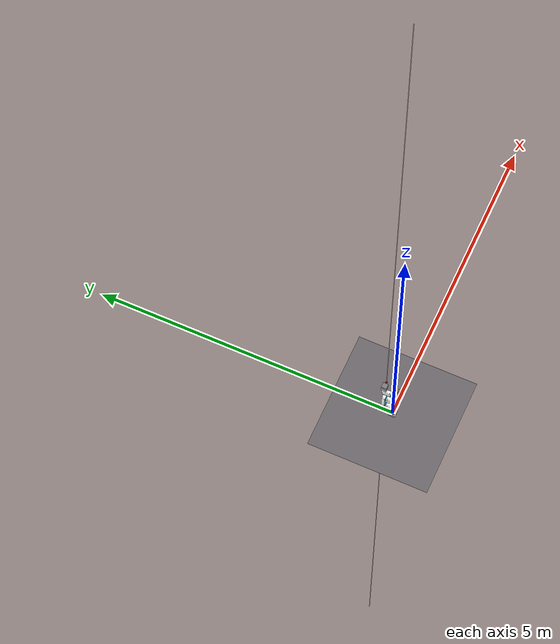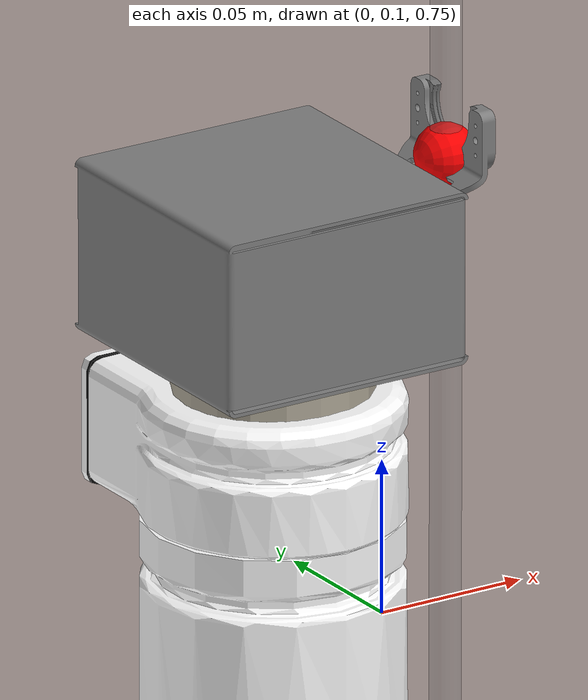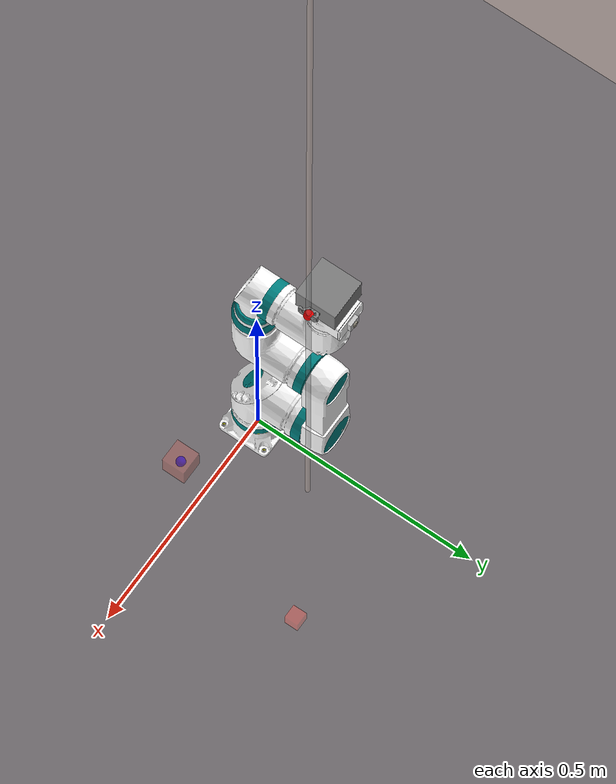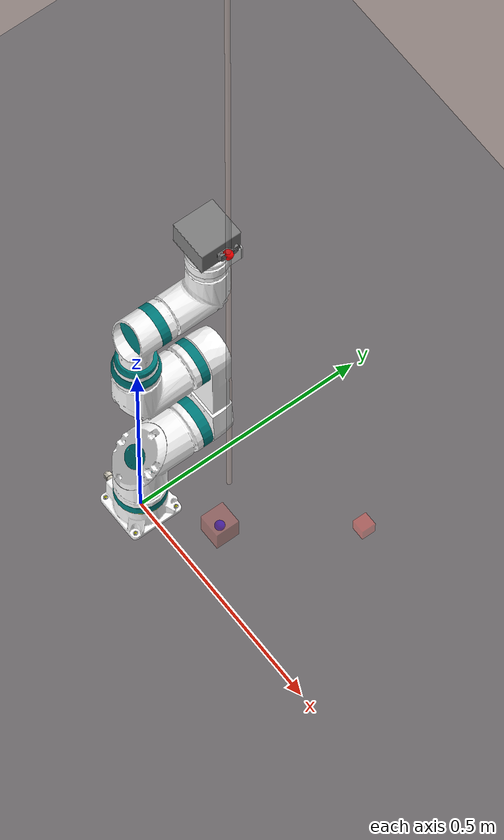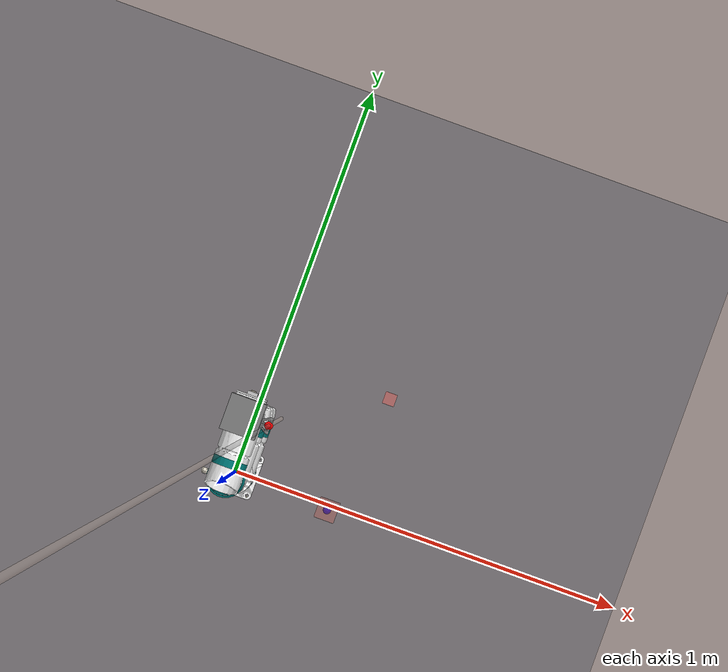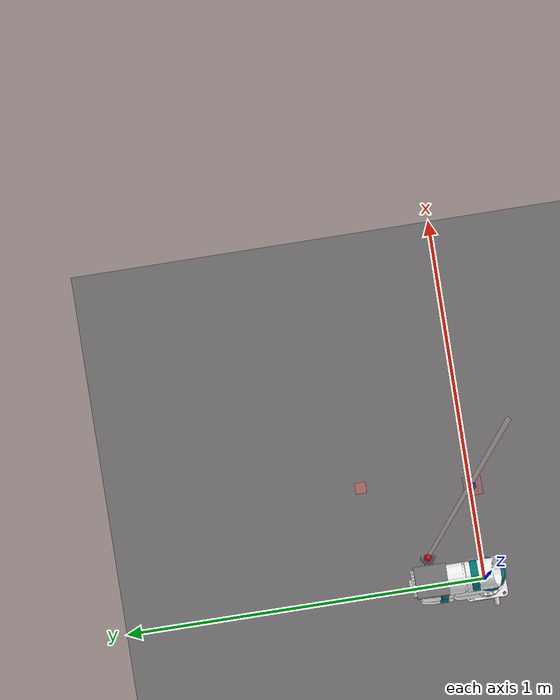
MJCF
<mujoco model="a3c scene">
  <include file="a3c_gpt.xml"/>

  <statistic center="0.3 0 0.4" extent="0.8" meansize="0.025"/>
  <option impratio="50" cone="elliptic" density="1.2" viscosity="0.00002" integrator="implicitfast"/>
  <option>
  <flag multiccd="enable" nativeccd="enable"/>
  </option>

  <visual>
    <headlight diffuse="0.6 0.6 0.6" ambient="0.1 0.1 0.1" specular="0 0 0"/>
    <global azimuth="120" elevation="-20"/>
    <map force="1"/>
  </visual>

  <asset>
    <texture name="grid" type="2d" builtin="checker" rgb1=".2 .3 .4" rgb2=".1 0.15 0.2" width="512" height="512"
      mark="cross" markrgb=".8 .8 .8"/>
    <material name="grid" texture="grid" texrepeat="1 1" texuniform="true"/>
  </asset>

  <worldbody>
    <light pos="0 0 1.5" directional="true"/>
    <geom name="floor" size="1 1 0.01" type="plane" material="grid" solref="0.02 10" />
    <body name="target" pos="0.25 0 .3" quat="0 0 0 1" mocap="true">
      <geom type="box" size=".025 .025 .025" contype="0" conaffinity="0" rgba=".6 .3 .3 .5"/>
      <site type="sphere" size="0.01" rgba="0 0 1 1" group="1"/>
    </body>

    <body name="object" pos="0.3 0.3 0.025" euler="180 0 0">
      <geom name="red_box" type="box" size=".015 0.015 0.015" solimp="0.998 0.998 0.001" solref="0.02 10" rgba="1 0 0 0.25" density="50" friction = "2 0.05 0.0001"/>
      <joint name="object_joint" type="free" damping="0.0005"/>
    </body>
  </worldbody>
</mujoco>

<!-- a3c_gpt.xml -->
<mujoco model="robot_arm">
    <compiler autolimits="true"/>
    <option integrator="implicitfast"/>
	<default>
		<!-- Default definitions for visual and collision geoms -->
		<default class="visual">
			<geom type="mesh" mass="0" group="2" contype="0" conaffinity="0"/>
		</default>
		<default class="collision">
			<geom group="3" type="mesh" condim="6" friction="1 5e-3 5e-4" solref=".01 1"/>
		</default>
		<!-- Default definition for all hinge joints -->
		<default class="joint_hinge" >
			<joint type="hinge" axis="0 1 0" range="-180 180" armature="0.005"/>
		</default>
		<!-- Default definition for slide joints with positive range -->
		<default class="joint_slide_pos">
			<joint type="slide" axis="0 1 0" range="0 0.02" damping="100" armature="0.005"/>
		</default>
		<!-- Default definition for slide joints with negative range -->
		<default class="joint_slide_neg">
			<joint type="slide" axis="0 1 0" range="-0.02 0" damping="100" armature="0.005"/>
		</default>

        <!-- Default settings for arm position servos -->
        <default class="arm_position">
            <position ctrlrange="-180 180" kp="1.5" kv="1.5"/>
        </default>
        <!-- Default settings for finger position servos -->
        <default class="finger_position">
            <position ctrlrange="-180 180"/>
        </default>
	</default>

	<asset>
		<!-- All materials -->
		<material name="DEFAULT_MTL.001" specular="0.0" shininess="0.25" rgba="0.800000 0.800000 0.800000 1.000000"/>
		<material name="MTL0.005" specular="0.0" shininess="0.25" rgba="1.000000 1.000000 0.000000 1.000000"/>
		<material name="MTL1.003" specular="0.0" shininess="0.25" rgba="1.000000 1.000000 1.000000 1.000000"/>
		<material name="MTL2.002" specular="0.0" shininess="0.25" rgba="1.000000 0.000000 0.000000 1.000000"/>
		<material name="MTL3.001" specular="0.0" shininess="0.25" rgba="0.000000 0.502000 0.502000 1.000000"/>
		<material name="MTL4.001" specular="0.0" shininess="0.25" rgba="0.110000 0.110000 0.110000 1.000000"/>
		<material name="MTL5.001" specular="0.0" shininess="0.25" rgba="0.843000 0.816000 0.753000 1.000000"/>

		<material name="MTL0.006" specular="0.0" shininess="0.25" rgba="1.000000 1.000000 1.000000 1.000000"/>
		<material name="MTL0.007" specular="0.0" shininess="0.25" rgba="0.000000 0.502000 0.502000 1.000000"/>
		<material name="MTL0.008" specular="0.0" shininess="0.25" rgba="0.000000 0.502000 0.502000 1.000000"/>
		<material name="MTL0.009" specular="0.0" shininess="0.25" rgba="0.000000 0.502000 0.502000 1.000000"/>
		<material name="MTL1.002" specular="0.0" shininess="0.25" rgba="1.000000 1.000000 1.000000 1.000000"/>
		<material name="MTL2.001" specular="0.0" shininess="0.25" rgba="1.000000 0.000000 0.000000 1.000000"/>
		<material name="Material.002" specular="0.0" shininess="0.25" rgba="0.800000 0.800000 0.800000 1.000000"/>

		<material name="DEFAULT_MTL" specular="0.0" shininess="0.25" rgba="0.800000 0.800000 0.800000 1.000000"/>
		<material name="MTL0.010" specular="0.0" shininess="0.25" rgba="1.000000 1.000000 1.000000 1.000000"/>
		<material name="MTL1.004" specular="0.0" shininess="0.25" rgba="0.000000 0.502000 0.502000 1.000000"/>

		<material name="MTL0" specular="0.0" shininess="0.25" rgba="1.000000 1.000000 1.000000 1.000000"/>
		<material name="MTL0.011" specular="0.0" shininess="0.25" rgba="0.000000 0.502000 0.502000 1.000000"/>
		<material name="MTL0.012" specular="0.0" shininess="0.25" rgba="0.000000 0.502000 0.502000 1.000000"/>
		<material name="MTL1" specular="0.0" shininess="0.25" rgba="0.000000 0.502000 0.502000 1.000000"/>

		<material name="MTL0.013" specular="0.0" shininess="0.25" rgba="1.000000 1.000000 1.000000 1.000000"/>
		<material name="MTL1.005" specular="0.0" shininess="0.25" rgba="0.000000 0.502000 0.502000 1.000000"/>

		<material name="MTL0.014" specular="0.0" shininess="0.25" rgba="0.000000 0.502000 0.502000 1.000000"/>
		<material name="MTL0.015" specular="0.0" shininess="0.25" rgba="1.000000 1.000000 1.000000 1.000000"/>
		<material name="MTL1.006" specular="0.0" shininess="0.25" rgba="0.000000 0.502000 0.502000 1.000000"/>

		<material name="DEFAULT_MTL.002" specular="0.0" shininess="0.25" rgba="0.800000 0.800000 0.800000 1.000000"/>
		<material name="MTL0.016" specular="0.0" shininess="0.25" rgba="1.000000 1.000000 1.000000 1.000000"/>
		<material name="MTL1.007" specular="0.0" shininess="0.25" rgba="0.098000 0.098000 0.098000 1.000000"/>
		<material name="MTL10" specular="0.0" shininess="0.25" rgba="0.843000 0.816000 0.753000 1.000000"/>
		<material name="MTL11" specular="0.0" shininess="0.25" rgba="0.251000 0.251000 0.251000 1.000000"/>
		<material name="MTL12" specular="0.0" shininess="0.25" rgba="0.827000 0.329000 0.071000 1.000000"/>
		<material name="MTL13" specular="0.0" shininess="0.25" rgba="0.017000 0.018000 0.019000 1.000000"/>
		<material name="MTL2.003" specular="0.0" shininess="0.25" rgba="0.784000 0.686000 0.510000 1.000000"/>
		<material name="MTL3" specular="0.0" shininess="0.25" rgba="0.691000 0.664000 0.598000 1.000000"/>
		<material name="MTL4" specular="0.0" shininess="0.25" rgba="0.060000 0.400000 0.060000 1.000000"/>
		<material name="MTL5" specular="0.0" shininess="0.25" rgba="0.157000 0.157000 0.157000 1.000000"/>
		<material name="MTL6" specular="0.0" shininess="0.25" rgba="0.725000 0.725000 0.725000 1.000000"/>
		<material name="MTL7" specular="0.0" shininess="0.25" rgba="0.459000 0.345000 0.176000 1.000000"/>
		<material name="MTL8" specular="0.0" shininess="0.25" rgba="0.502000 0.502000 0.502000 1.000000"/>
		<material name="MTL9" specular="0.0" shininess="0.25" rgba="1.000000 1.000000 0.000000 1.000000"/>

		<!-- Meshes for all links -->
		<mesh file="meshes/visual/base_link/base_link_0.obj"/>
		<mesh file="meshes/visual/base_link/base_link_1.obj"/>
		<mesh file="meshes/visual/base_link/base_link_2.obj"/>
		<mesh file="meshes/visual/base_link/base_link_3.obj"/>
		<mesh file="meshes/visual/base_link/base_link_4.obj"/>
		<mesh file="meshes/visual/base_link/base_link_5.obj"/>
		<mesh file="meshes/visual/base_link/base_link_6.obj"/>

		<mesh file="meshes/visual/l1/l1_0.obj"/>
		<mesh file="meshes/visual/l1/l1_1.obj"/>
		<mesh file="meshes/visual/l1/l1_2.obj"/>
		<mesh file="meshes/visual/l1/l1_3.obj"/>
		<mesh file="meshes/visual/l1/l1_4.obj"/>
		<mesh file="meshes/visual/l1/l1_5.obj"/>
		<mesh file="meshes/visual/l1/l1_6.obj"/>

		<mesh file="meshes/visual/l2/l2_0.obj"/>
		<mesh file="meshes/visual/l2/l2_1.obj"/>
		<mesh file="meshes/visual/l2/l2_2.obj"/>

		<mesh file="meshes/visual/l3/l3_0.obj"/>
		<mesh file="meshes/visual/l3/l3_1.obj"/>
		<mesh file="meshes/visual/l3/l3_2.obj"/>
		<mesh file="meshes/visual/l3/l3_3.obj"/>

		<mesh file="meshes/visual/l4/l4_0.obj"/>
		<mesh file="meshes/visual/l4/l4_1.obj"/>

		<mesh file="meshes/visual/l5/l5_0.obj"/>
		<mesh file="meshes/visual/l5/l5_1.obj"/>
		<mesh file="meshes/visual/l5/l5_2.obj"/>

		<mesh file="meshes/visual/l6/l6_0.obj"/>
		<mesh file="meshes/visual/l6/l6_1.obj"/>
		<mesh file="meshes/visual/l6/l6_2.obj"/>
		<mesh file="meshes/visual/l6/l6_3.obj"/>
		<mesh file="meshes/visual/l6/l6_4.obj"/>
		<mesh file="meshes/visual/l6/l6_5.obj"/>
		<mesh file="meshes/visual/l6/l6_6.obj"/>
		<mesh file="meshes/visual/l6/l6_7.obj"/>
		<mesh file="meshes/visual/l6/l6_8.obj"/>
		<mesh file="meshes/visual/l6/l6_9.obj"/>
		<mesh file="meshes/visual/l6/l6_10.obj"/>
		<mesh file="meshes/visual/l6/l6_11.obj"/>
		<mesh file="meshes/visual/l6/l6_12.obj"/>
		<mesh file="meshes/visual/l6/l6_13.obj"/>
		<mesh file="meshes/visual/l6/l6_14.obj"/>

		<mesh file="meshes/visual/cover/cover.obj"/>

		<mesh file="meshes/visual/finger1/finger1.obj"/>
		<mesh file="meshes/visual/finger2/finger2.obj"/>
	</asset>

	<worldbody>
		<body name="base_link" euler="90 0 0">
			<!-- base_link geoms -->
			<inertial pos="0 0 0" mass="0.1" diaginertia="0.03 0.03 0.03"/>
			<geom mesh="base_link_0" material="DEFAULT_MTL.001" class="visual"/>
			<geom mesh="base_link_1" material="MTL5.001" class="visual"/>
			<geom mesh="base_link_2" material="MTL4.001" class="visual"/>
			<geom mesh="base_link_3" material="MTL3.001" class="visual"/>
			<geom mesh="base_link_4" material="MTL2.002" class="visual"/>
			<geom mesh="base_link_5" material="MTL1.003" class="visual"/>
			<geom mesh="base_link_6" material="MTL0.005" class="visual"/>
			<geom mesh="base_link_0" class="collision"/>
			<geom mesh="base_link_1" class="collision"/>
			<geom mesh="base_link_2" class="collision"/>
			<geom mesh="base_link_3" class="collision"/>
			<geom mesh="base_link_4" class="collision"/>
			<geom mesh="base_link_5" class="collision"/>
			<geom mesh="base_link_6" class="collision"/>

			<body name="l1" pos="0 0.1915 0" euler="0 0 0" gravcomp="1">
				<joint name="base_l1_joint" class="joint_hinge"/>
				<inertial pos="0.00000463 0.04597 0" mass="5.1" diaginertia="0.003049855 0.0018651954 0.001865195"/>
				<!-- l1 geoms -->
				<geom mesh="l1_0" material="MTL0.009" class="visual"/>
				<geom mesh="l1_1" material="MTL0.008" class="visual"/>
				<geom mesh="l1_2" material="MTL0.007" class="visual"/>
				<geom mesh="l1_3" material="MTL2.001" class="visual"/>
				<geom mesh="l1_4" material="MTL1.002" class="visual"/>
				<geom mesh="l1_5" material="Material.002" class="visual"/>
				<geom mesh="l1_6" material="MTL0.006" class="visual"/>
				<geom mesh="l1_0" class="collision"/>
				<geom mesh="l1_1" class="collision"/>
				<geom mesh="l1_2" class="collision"/>
				<geom mesh="l1_3" class="collision"/>
				<geom mesh="l1_4" class="collision"/>
				<geom mesh="l1_5" class="collision"/>
				<geom mesh="l1_6" class="collision"/>

				<body name="l2" pos="0 0 -0.1405" euler="-90 -90 0" gravcomp="1">
					<joint name="l1_l2_joint" class="joint_hinge"/>
					<inertial pos="0.1104 0 0.01661" mass="1.36" diaginertia="0.00165864 0.013069 0.014101"/>
					<!-- l2 geoms -->
					<geom mesh="l2_0" material="DEFAULT_MTL" class="visual"/>
					<geom mesh="l2_1" material="MTL1.004" class="visual"/>
					<geom mesh="l2_2" material="MTL0.010" class="visual"/>
					<geom mesh="l2_0" class="collision"/>
					<geom mesh="l2_1" class="collision"/>
					<geom mesh="l2_2" class="collision"/>

					<body name="l3" pos="0.230 -0.1415 0" euler="0 0 0" gravcomp="1">
						<joint name="l2_l3_joint" class="joint_hinge"/>
						<inertial pos="0.00007798 -0.03574 0" mass="3.319" diaginertia="0.017921 0.011307 0.010111"/>
						<!-- l3 geoms -->
						<geom mesh="l3_0" material="MTL1" class="visual"/>
						<geom mesh="l3_1" material="MTL0" class="visual"/>
						<geom mesh="l3_2" material="MTL0.012" class="visual"/>
						<geom mesh="l3_3" material="MTL0.011" class="visual"/>
						<geom mesh="l3_0" class="collision"/>
						<geom mesh="l3_1" class="collision"/>
						<geom mesh="l3_2" class="collision"/>
						<geom mesh="l3_3" class="collision"/>

						<body name="l4" pos="0.230 0 0" euler="90 0 -90" gravcomp="1">
							<joint name="l3_l4_joint" class="joint_hinge"/>
							<inertial pos="-0.0000176 -0.005787 -0.04962" mass="0.508" diaginertia="0.0010416 0.001147 0.000490056"/>
							<!-- l4 geoms -->
							<geom mesh="l4_0" material="MTL1.005" class="visual"/>
							<geom mesh="l4_1" material="MTL0.013" class="visual"/>
							<geom mesh="l4_0" class="collision"/>
							<geom mesh="l4_1" class="collision"/>

							<body name="l5" pos="0 0 -0.1625" euler="-90 0 0" gravcomp="1">
								<joint name="l4_l5_joint" class="joint_hinge"/>
								<inertial pos="0.000000127 -0.04124 0" mass="2.49617" diaginertia="0.001 0.001 0.001"/>
								<!-- l5 geoms -->
								<geom mesh="l5_0" material="MTL1.006" class="visual"/>
								<geom mesh="l5_1" material="MTL0.015" class="visual"/>
								<geom mesh="l5_2" material="MTL0.014" class="visual"/>
								<geom mesh="l5_0" class="collision"/>
								<geom mesh="l5_1" class="collision"/>
								<geom mesh="l5_2" class="collision"/>

								<body name="l6" pos="0 0 0.165" euler="90 90 0" gravcomp="1">
									<joint name="l5_l6_joint" class="joint_hinge"/>
									<inertial pos="0.000214 -0.00486 0.2902" mass="0.5" diaginertia="0.000352796 0.000341516 0.000518422"/>
									<!-- l6 geoms -->
									<geom mesh="l6_0" material="MTL13" class="visual"/>
									<geom mesh="l6_1" material="MTL12" class="visual"/>
									<geom mesh="l6_2" material="MTL11" class="visual"/>
									<geom mesh="l6_3" material="MTL10" class="visual"/>
									<geom mesh="l6_4" material="MTL9" class="visual"/>
									<geom mesh="l6_5" material="MTL8" class="visual"/>
									<geom mesh="l6_6" material="MTL7" class="visual"/>
									<geom mesh="l6_7" material="MTL6" class="visual"/>
									<geom mesh="l6_8" material="MTL5" class="visual"/>
									<geom mesh="l6_9" material="MTL4" class="visual"/>
									<geom mesh="l6_10" material="MTL3" class="visual"/>
									<geom mesh="l6_11" material="MTL2.003" class="visual"/>
									<geom mesh="l6_12" material="MTL1.007" class="visual"/>
									<geom mesh="l6_13" material="DEFAULT_MTL.002" class="visual"/>
									<geom mesh="l6_14" material="MTL0.016" class="visual"/>
									<geom mesh="l6_0" class="collision"/>
									<geom mesh="l6_1" class="collision"/>
									<geom mesh="l6_2" class="collision"/>
									<geom mesh="l6_3" class="collision"/>
									<geom mesh="l6_4" class="collision"/>
									<geom mesh="l6_5" class="collision"/>
									<geom mesh="l6_6" class="collision"/>
									<geom mesh="l6_7" class="collision"/>
									<geom mesh="l6_8" class="collision"/>
									<geom mesh="l6_9" class="collision"/>
									<geom mesh="l6_10" class="collision"/>
									<geom mesh="l6_11" class="collision"/>
									<geom mesh="l6_12" class="collision"/>
									<geom mesh="l6_13" class="collision"/>
									<geom mesh="l6_14" class="collision"/>

									<body name="cover" pos="0 0 0" euler="0 0 0"  gravcomp="1">
										<site name="attachment_site" rgba="1 0 0 1" size="0.01" group="1"/>
                                        <site name="grip_site" pos="0 0.05 0.0625" rgba="1 0 0 1" size="0.01" group="1"/>
                                        <site name="grip_site_cylinder" pos="0 0.05 0.0625" euler="-90 0 0" size="0.005 10" rgba="0.5 0.5 0.5 0.3" type="cylinder" group="1"/>
										<joint name="l6_cover" class="joint_hinge"/>
										<geom mesh="cover" class="visual"/>
										<geom mesh="cover" class="collision"/>

										<body name="finger1" pos="0 0.03 0.0425" euler="-90 0 90" gravcomp="1">
											<joint name="cover_finger1" class="joint_slide_pos"/>
											<geom mesh="finger1" class="visual"/>
											<geom mesh="finger1" class="collision" solref="0.02 10" friction = "2 0.05 0.0001"/>
										</body>

										<body name="finger2" pos="0 0.03 0.0425" euler="-90 0 90" gravcomp="1">
											<joint name="cover_finger2" class="joint_slide_neg"/>
											<geom mesh="finger2" class="visual"/>
											<geom mesh="finger2" class="collision" solref="0.02 10" friction = "2 0.05 0.0001"/>
										</body>
									</body>
								</body>
							</body>
						</body>
					</body>
				</body>
			</body>
		</body>
	</worldbody>

<actuator>
	<position joint="base_l1_joint" class="arm_position"/>
	<position joint="l1_l2_joint" class="arm_position"/>
	<position joint="l2_l3_joint" class="arm_position"/>
	<position joint="l3_l4_joint" class="arm_position"/>
	<position joint="l4_l5_joint" class="arm_position"/>
	<position joint="l5_l6_joint" class="arm_position"/>
	<position joint="l6_cover" class="arm_position"/>
	<position joint="cover_finger1" ctrlrange="0 0.02" forcerange="-20 20"/>
	<position joint="cover_finger2" ctrlrange="-0.02 0" forcerange="-20 20"/>
</actuator>

	<keyframe>
		<key name="home" qpos="-1.9 -0.719 -1.21 0.147 -1.08 0.758 0.921 0.03 -0.03 0.3 0.3 0.025 0.7071 -0.7071 0 0"/>
	</keyframe>
</mujoco>
